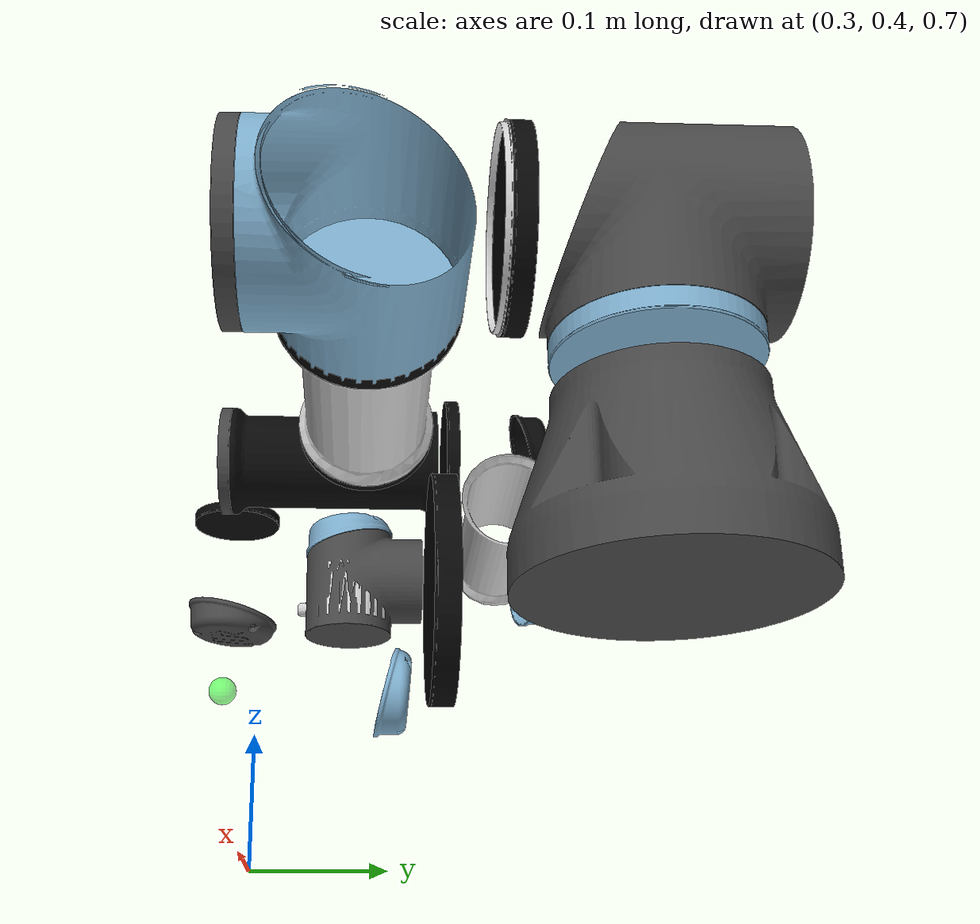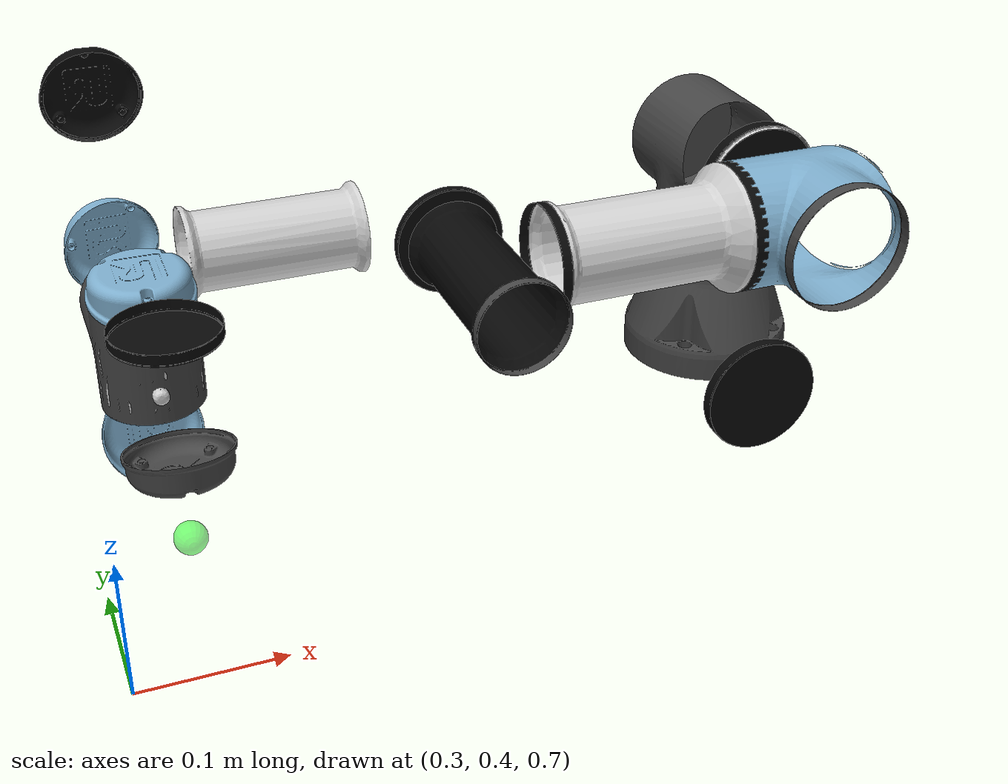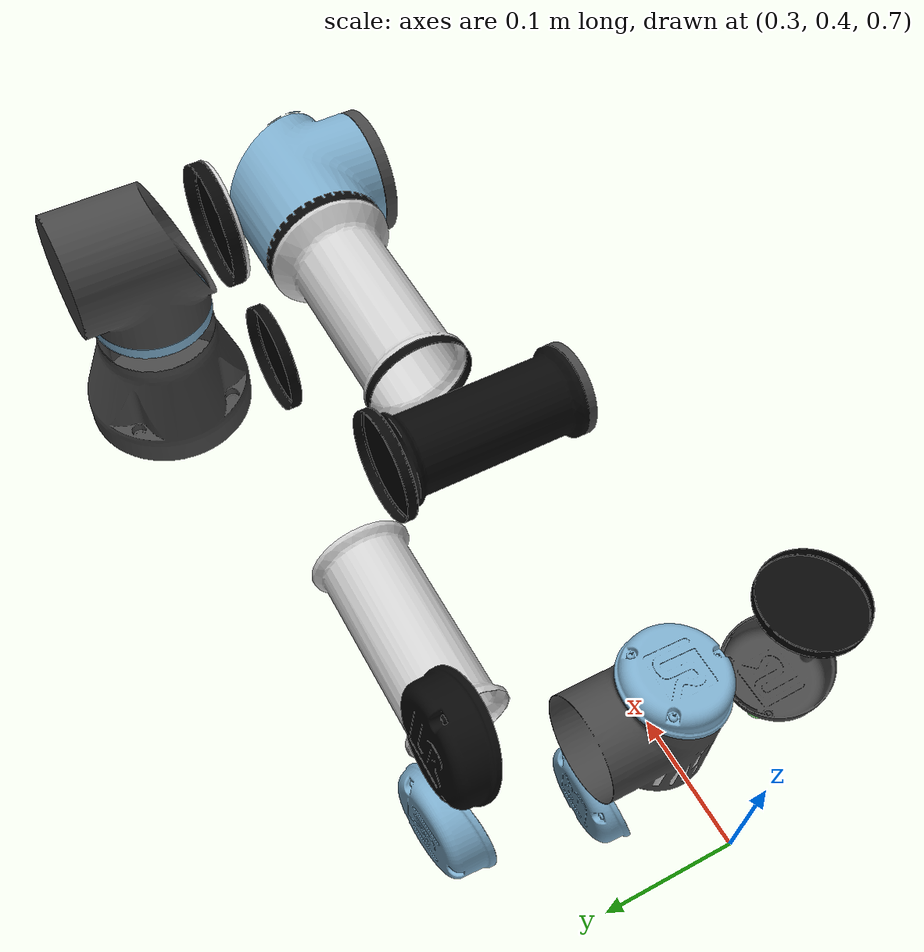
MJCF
<mujoco model="ur3e">
  <compiler angle="radian" meshdir="." autolimits="true"/>

  <option integrator="implicitfast"/>

  <default>
    <default class="ur3e">
      <material specular="0.5" shininess="0.25"/>
      <joint axis="0 1 0" range="-6.28319 6.28319" armature="0.1"/>
      <general gaintype="fixed" biastype="affine" ctrlrange="-6.2831 6.2831" gainprm="1000" biasprm="0 -1000 -200"/>
      <default class="size2">
        <general forcerange="-54 54"/>
      </default>
      <default class="size1">
        <default class="size1_limited">
          <joint range="-3.1415 3.1415"/>
          <general gainprm="500" biasprm="0 -500 -100" ctrlrange="-3.1415 3.1415" forcerange="-28 28"/>
        </default>
      </default>
      <default class="size0">
        <general gainprm="250" biasprm="0 -250 -50" forcerange="-9 9"/>
      </default>
      <default class="visual">
        <geom type="mesh" contype="0" conaffinity="0" group="2"/>
      </default>
      <default class="collision">
        <geom type="capsule" group="3"/>
        <default class="eef_collision">
          <geom type="cylinder"/>
        </default>
      </default>
      <site size="0.001" rgba="0.5 0.5 0.5 0.3" group="4"/>
    </default>
  </default>

  <asset>
    <material class="ur3e" name="urblack" rgba="0.033 0.033 0.033 1"/>
    <material class="ur3e" name="jointgray" rgba="0.278 0.278 0.278 1"/>
    <material class="ur3e" name="linkgray" rgba="0.82 0.82 0.82 1"/>
    <material class="ur3e" name="urblue" rgba="0.49 0.678 0.8 1"/>

    <mesh file="../ur3e/assets/base_0.obj"/>
    <mesh file="../ur3e/assets/base_1.obj"/>
    <mesh file="../ur3e/assets/shoulder_0.obj"/>
    <mesh file="../ur3e/assets/shoulder_1.obj"/>
    <mesh file="../ur3e/assets/shoulder_2.obj"/>
    <mesh file="../ur3e/assets/upperarm_0.obj"/>
    <mesh file="../ur3e/assets/upperarm_1.obj"/>
    <mesh file="../ur3e/assets/upperarm_2.obj"/>
    <mesh file="../ur3e/assets/upperarm_3.obj"/>
    <mesh file="../ur3e/assets/forearm_0.obj"/>
    <mesh file="../ur3e/assets/forearm_1.obj"/>
    <mesh file="../ur3e/assets/forearm_2.obj"/>
    <mesh file="../ur3e/assets/forearm_3.obj"/>
    <mesh file="../ur3e/assets/wrist1_0.obj"/>
    <mesh file="../ur3e/assets/wrist1_1.obj"/>
    <mesh file="../ur3e/assets/wrist1_2.obj"/>
    <mesh file="../ur3e/assets/wrist2_0.obj"/>
    <mesh file="../ur3e/assets/wrist2_1.obj"/>
    <mesh file="../ur3e/assets/wrist2_2.obj"/>
    <mesh file="../ur3e/assets/wrist3.obj"/>
  </asset>

  <worldbody>
    <light name="spotlight" mode="targetbodycom" target="wrist_2_link" pos="0 -1 2"/>
    <body name="ur3e_base" pos="0.8 0.6 0.745" quat="0 0 0 -1" childclass="ur3e">
      <inertial mass="2.0" pos="0 0 0" diaginertia="0.0030531654454 0.0030531654454 0.005625"/>
      <geom mesh="base_0" material="urblack" class="visual"/>
      <geom mesh="base_1" material="jointgray" class="visual"/>
      <body name="shoulder_link" pos="0 0 0.163">
        <inertial mass="2.0" pos="0 0 0" diaginertia="0.008093163429399999 0.008093163429399999 0.005625"/>
        <joint name="shoulder_pan_joint" class="size2" axis="0 0 1"/>
        <geom mesh="shoulder_0" material="urblue" class="visual"/>
        <geom mesh="shoulder_1" material="urblack" class="visual"/>
        <geom mesh="shoulder_2" material="jointgray" class="visual"/>
        <geom class="collision" size="0.05 0.05" pos="0 0 -0.04"/>
        <body name="upper_arm_link" pos="0 0.12 0" quat="1 0 1 0">
          <inertial mass="3.42" pos="0 0 0.121825" diaginertia="0.021728483221103233 0.021728483221103233 0.00961875"/>
          <joint name="shoulder_lift_joint" class="size2"/>
          <geom mesh="upperarm_0" material="urblack" class="visual"/>
          <geom mesh="upperarm_1" material="urblue" class="visual"/>
          <geom mesh="upperarm_2" material="jointgray" class="visual"/>
          <geom mesh="upperarm_3" material="linkgray" class="visual"/>
          <geom class="collision" pos="0 -0.04 0" quat="1 1 0 0" size="0.05 0.05"/>
          <geom class="collision" size="0.04 0.1" pos="0 0 0.1"/>
          <body name="forearm_link" pos="0 -0.093 0.24355">
            <inertial mass="1.26" pos="0 0 0.1066" diaginertia="0.0065445675821719194 0.0065445675821719194 0.00354375"/>
            <joint name="elbow_joint" class="size1_limited"/>
            <geom mesh="forearm_0" material="urblue" class="visual"/>
            <geom mesh="forearm_1" material="linkgray" class="visual"/>
            <geom mesh="forearm_2" material="urblack" class="visual"/>
            <geom mesh="forearm_3" material="jointgray" class="visual"/>
            <geom class="collision" pos="0 0.06 0" quat="1 1 0 0" size="0.04 0.052"/>
            <geom class="collision" size="0.03 0.1" pos="0 0 0.1"/>
            <body name="wrist_1_link" pos="0 0 0.2132" quat="1 0 1 0">
              <inertial mass="0.8" pos="0 0.104 0" diaginertia="0.002084999166 0.002084999166 0.00225"/>
              <joint name="wrist_1_joint" class="size0"/>
              <geom mesh="wrist1_0" material="urblack" class="visual"/>
              <geom mesh="wrist1_1" material="urblue" class="visual"/>
              <geom mesh="wrist1_2" material="jointgray" class="visual"/>
              <geom class="collision" pos="0 0.03 0" quat="1 1 0 0" size="0.032 0.045"/>
              <body name="wrist_2_link" pos="0 0.104 0">
                <inertial mass="0.8" pos="0 0 0.1" diaginertia="0.002084999166 0.002084999166 0.00225"/>
                <joint name="wrist_2_joint" axis="0 0 1" class="size0"/>
                <geom mesh="wrist2_0" material="urblue" class="visual"/>
                <geom mesh="wrist2_1" material="urblack" class="visual"/>
                <geom mesh="wrist2_2" material="jointgray" class="visual"/>
                <geom class="collision" size="0.032 0.045" pos="0 0 0.025"/>
                <geom class="collision" pos="0 0.015 0.085" quat="1 1 0 0" size="0.032 0.035"/>
                <body name="wrist_3_link" pos="0 0 0.08535">
                  <inertial mass="0.35" pos="0 0.0771683 0" quat="1 0 0 1"
                    diaginertia="0.00013626661215999998 0.00013626661215999998 0.0001792"/>
                  <joint name="wrist_3_joint" class="size0"/>
                  <geom material="linkgray" mesh="wrist3" class="visual"/>

                  <body name="flange" pos="0 0.09 0" quat="1 -1 0 0">
                    <site name="tcp" pos="0 0 0" size="0.01" rgba="0 1 0 0.5" group="2" />
                  </body>

                </body>
              </body>
            </body>
          </body>
        </body>
      </body>
    </body>
  </worldbody>

  <actuator>
    <general class="size2" name="shoulder_pan" joint="shoulder_pan_joint"/>
    <general class="size2" name="shoulder_lift" joint="shoulder_lift_joint"/>
    <general class="size1_limited" name="elbow" joint="elbow_joint"/>
    <general class="size0" name="wrist_1" joint="wrist_1_joint"/>
    <general class="size0" name="wrist_2" joint="wrist_2_joint"/>
    <general class="size0" name="wrist_3" joint="wrist_3_joint"/>
  </actuator>

  <keyframe>
    <key name="home" qpos="0 -1.5708 0 -1.5708 0 0" ctrl="0 -1.5708 0 -1.5708 0 0"/>
  </keyframe>
</mujoco>
